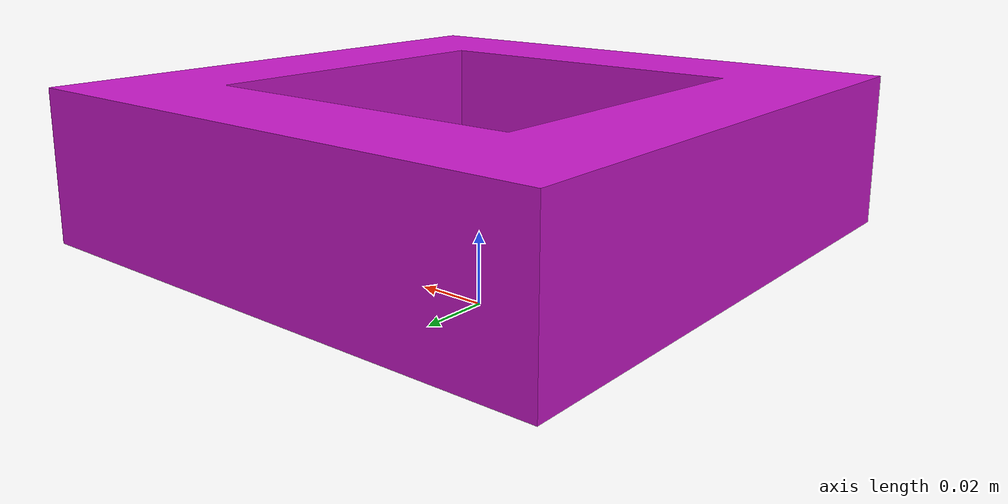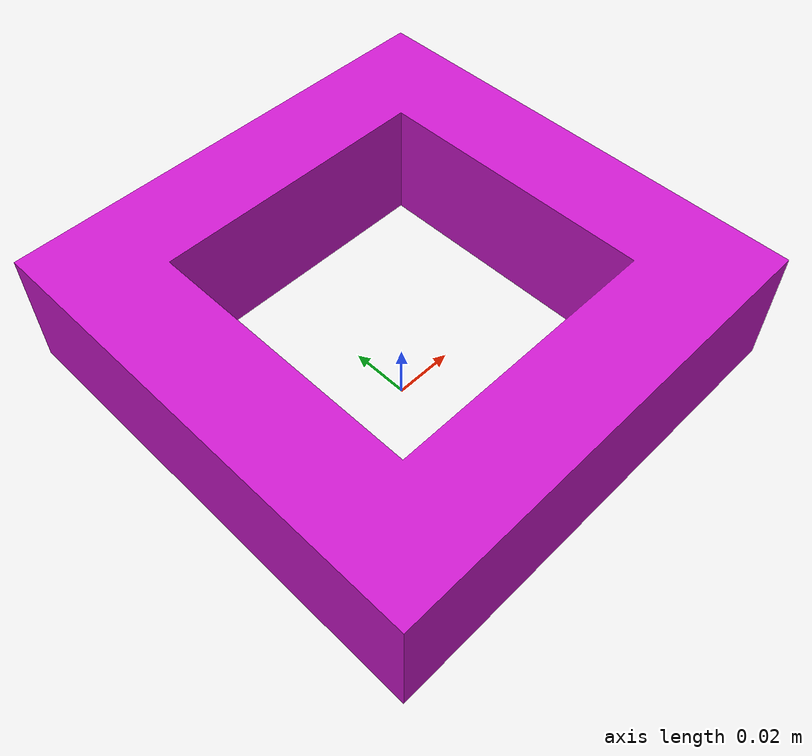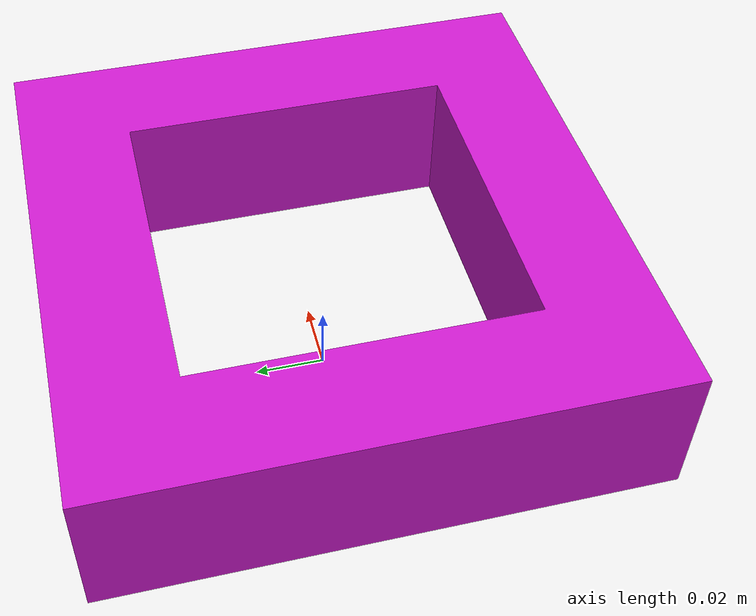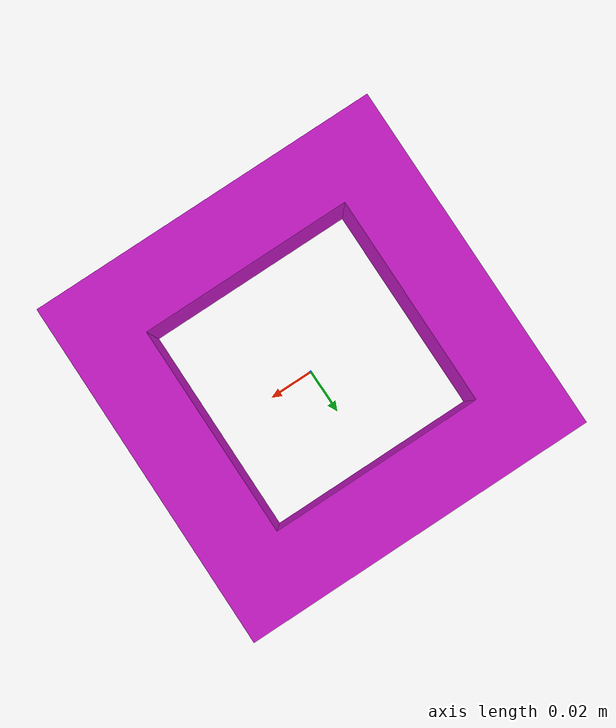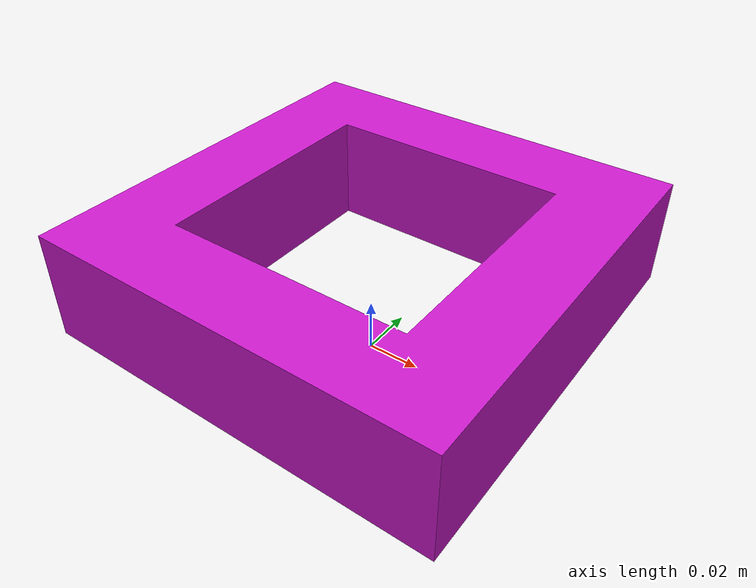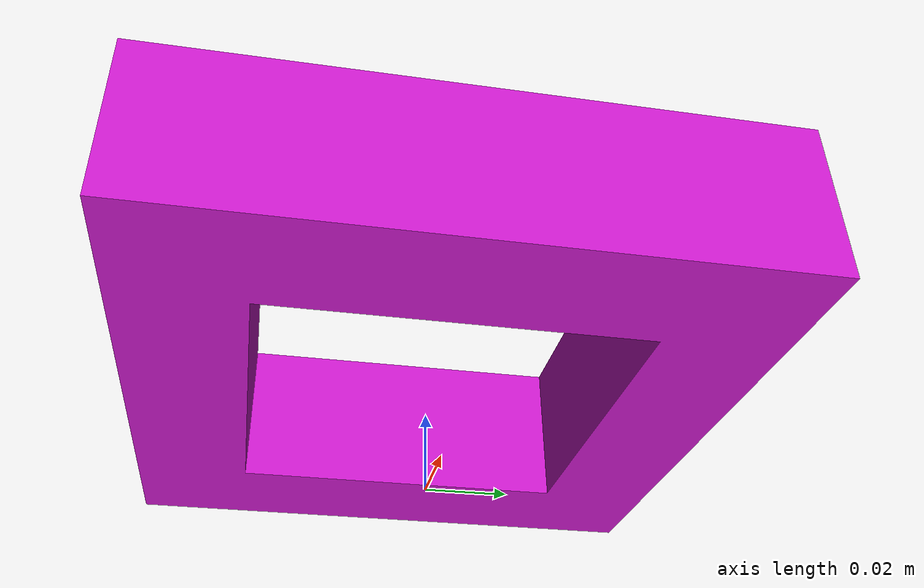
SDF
<?xml version="1.0" ?>
<sdf version="1.6">

  <model name="nought_purple_30mm">
    <link name="nought_link">
      <pose>0 0 20e-3 1.5708 0 0</pose>
      <inertial>
        <mass>0.0001</mass>
        <inertia>
          <ixx>1e-5</ixx>
          <ixy>0</ixy>
          <ixz>0</ixz>
          <iyy>1e-5</iyy>
          <iyz>0</iyz>
          <izz>1e-5</izz>
        </inertia>
      </inertial>
      <collision name="collision">
        <geometry>
          <mesh><uri>model://nought_purple_30mm/nought_30mm_40H.STL</uri></mesh>
        </geometry>
        <surface>
          <friction>
            <ode>
              <mu>1.0e6</mu>
              <mu2>1.0e6</mu2>
            </ode>
          </friction>
          <contact>
            <ode>
              <min_depth>5e-3</min_depth>
              <max_vel>0.0</max_vel>
            </ode>
          </contact>
        </surface>
      </collision>
      <visual name="visual">
        <geometry>
          <mesh><uri>model://nought_purple_30mm/nought_30mm_40H.STL</uri></mesh>
        </geometry>
        <material>
          <ambient>0.8 0.1 0.8 1</ambient>
          <diffuse>0.8 0.1 0.8 1</diffuse>
          <specular>0 0 0 0</specular>
          <emissive>0 0 0 1</emissive>
        </material>
      </visual>
    </link>
  </model>

</sdf>
